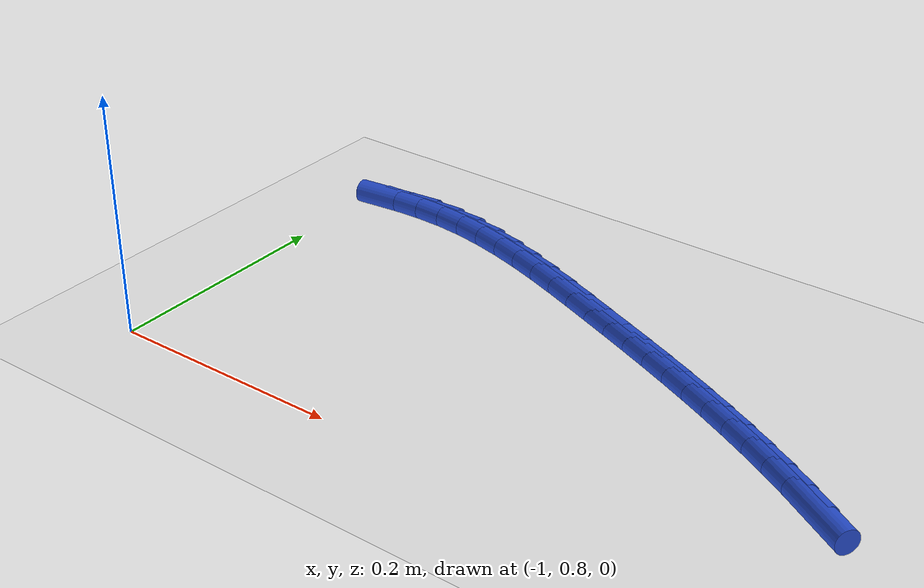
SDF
<sdf version="1.6">
 <world name="default">
  <model name="ground_plane">
   <static>1</static>
   <link name="link">
    <collision name="collision">
     <geometry><plane><normal>0 0 1</normal><size>100 100</size></plane></geometry>
     <surface><friction><ode><mu>100</mu><mu2>50</mu2></ode></friction></surface>
    </collision>
    <visual name="visual">
     <cast_shadows>0</cast_shadows>
     <geometry><plane><normal>0 0 1</normal><size>100 100</size></plane></geometry>
     <material>
      <script><uri>file://media/materials/scripts/gazebo.material</uri><name>Gazebo/WhiteGlow</name></script>
     </material>
    </visual>
   </link>
  </model>
  <model name="line">
   <link name="link_41">
    <pose>-0.4624098339774462 0.9082237432184129 0.01 0 1.57 -0.5429785711575642</pose>
    <collision name="collision">
     <geometry><cylinder><radius>0.01</radius><length>0.08</length></cylinder></geometry>
    </collision>
    <visual name="visual">
     <material>
      <script><name>Gazebo/Blue</name><uri>file://media/materials/scripts/gazebo.material</uri></script>
     </material>
     <geometry><cylinder><radius>0.01</radius><length>0.08</length></cylinder></geometry>
    </visual>
   </link>
   <link name="link_42">
    <pose>-0.4843193575159778 0.9214458272823145 0.01 0 1.57 -0.517570465941171</pose>
    <collision name="collision">
     <geometry><cylinder><radius>0.01</radius><length>0.08</length></cylinder></geometry>
    </collision>
    <visual name="visual">
     <material>
      <script><name>Gazebo/Blue</name><uri>file://media/materials/scripts/gazebo.material</uri></script>
     </material>
     <geometry><cylinder><radius>0.01</radius><length>0.08</length></cylinder></geometry>
    </visual>
   </link>
   <link name="link_43">
    <pose>-0.5065092868379267 0.9340794483927238 0.01 0 1.57 -0.4941953560387322</pose>
    <collision name="collision">
     <geometry><cylinder><radius>0.01</radius><length>0.08</length></cylinder></geometry>
    </collision>
    <visual name="visual">
     <material>
      <script><name>Gazebo/Blue</name><uri>file://media/materials/scripts/gazebo.material</uri></script>
     </material>
     <geometry><cylinder><radius>0.01</radius><length>0.08</length></cylinder></geometry>
    </visual>
   </link>
   <link name="link_44">
    <pose>-0.5289666391678735 0.9461792275500257 0.01 0 1.57 -0.47292653974310134</pose>
    <collision name="collision">
     <geometry><cylinder><radius>0.01</radius><length>0.08</length></cylinder></geometry>
    </collision>
    <visual name="visual">
     <material>
      <script><name>Gazebo/Blue</name><uri>file://media/materials/scripts/gazebo.material</uri></script>
     </material>
     <geometry><cylinder><radius>0.01</radius><length>0.08</length></cylinder></geometry>
    </visual>
   </link>
   <link name="link_45">
    <pose>-0.5516784317303979 0.9577997857546059 0.01 0 1.57 -0.45381763930004954</pose>
    <collision name="collision">
     <geometry><cylinder><radius>0.01</radius><length>0.08</length></cylinder></geometry>
    </collision>
    <visual name="visual">
     <material>
      <script><name>Gazebo/Blue</name><uri>file://media/materials/scripts/gazebo.material</uri></script>
     </material>
     <geometry><cylinder><radius>0.01</radius><length>0.08</length></cylinder></geometry>
    </visual>
   </link>
   <link name="link_46">
    <pose>-0.5746316817500805 0.9689957440068487 0.01 0 1.57 -0.436904879874559</pose>
    <collision name="collision">
     <geometry><cylinder><radius>0.01</radius><length>0.08</length></cylinder></geometry>
    </collision>
    <visual name="visual">
     <material>
      <script><name>Gazebo/Blue</name><uri>file://media/materials/scripts/gazebo.material</uri></script>
     </material>
     <geometry><cylinder><radius>0.01</radius><length>0.08</length></cylinder></geometry>
    </visual>
   </link>
   <link name="link_47">
    <pose>-0.5978134064515013 0.9798217233071401 0.01 0 1.57 -0.42220948752634563</pose>
    <collision name="collision">
     <geometry><cylinder><radius>0.01</radius><length>0.08</length></cylinder></geometry>
    </collision>
    <visual name="visual">
     <material>
      <script><name>Gazebo/Blue</name><uri>file://media/materials/scripts/gazebo.material</uri></script>
     </material>
     <geometry><cylinder><radius>0.01</radius><length>0.08</length></cylinder></geometry>
    </visual>
   </link>
   <link name="link_48">
    <pose>-0.6212106230592401 0.9903323446558651 0.01 0 1.57 -0.4097400491713788</pose>
    <collision name="collision">
     <geometry><cylinder><radius>0.01</radius><length>0.08</length></cylinder></geometry>
    </collision>
    <visual name="visual">
     <material>
      <script><name>Gazebo/Blue</name><uri>file://media/materials/scripts/gazebo.material</uri></script>
     </material>
     <geometry><cylinder><radius>0.01</radius><length>0.08</length></cylinder></geometry>
    </visual>
   </link>
   <link name="link_49">
    <pose>-0.6448103487978774 1.0005822290534085 0.01 0 1.57 -0.39949471489185256</pose>
    <collision name="collision">
     <geometry><cylinder><radius>0.01</radius><length>0.08</length></cylinder></geometry>
    </collision>
    <visual name="visual">
     <material>
      <script><name>Gazebo/Blue</name><uri>file://media/materials/scripts/gazebo.material</uri></script>
     </material>
     <geometry><cylinder><radius>0.01</radius><length>0.08</length></cylinder></geometry>
    </visual>
   </link>
   <link name="link_50">
    <pose>-0.6685996008919932 1.010625997500156 0.01 0 1.57 -0.3914631587835882</pose>
    <collision name="collision">
     <geometry><cylinder><radius>0.01</radius><length>0.08</length></cylinder></geometry>
    </collision>
    <visual name="visual">
     <material>
      <script><name>Gazebo/Blue</name><uri>file://media/materials/scripts/gazebo.material</uri></script>
     </material>
     <geometry><cylinder><radius>0.01</radius><length>0.08</length></cylinder></geometry>
    </visual>
   </link>
   <link name="link_51">
    <pose>-0.6925653965661681 1.0205182709964924 0.01 0 1.57 -0.3856282459099491</pose>
    <collision name="collision">
     <geometry><cylinder><radius>0.01</radius><length>0.08</length></cylinder></geometry>
    </collision>
    <visual name="visual">
     <material>
      <script><name>Gazebo/Blue</name><uri>file://media/materials/scripts/gazebo.material</uri></script>
     </material>
     <geometry><cylinder><radius>0.01</radius><length>0.08</length></cylinder></geometry>
    </visual>
   </link>
   <link name="link_52">
    <pose>-0.7166947530449813 1.030313670542803 0.01 0 1.57 -0.381757426390218</pose>
    <collision name="collision">
     <geometry><cylinder><radius>0.01</radius><length>0.08</length></cylinder></geometry>
    </collision>
    <visual name="visual">
     <material>
      <script><name>Gazebo/Blue</name><uri>file://media/materials/scripts/gazebo.material</uri></script>
     </material>
     <geometry><cylinder><radius>0.01</radius><length>0.08</length></cylinder></geometry>
    </visual>
   </link>
   <link name="link_53">
    <pose>-0.7409746263709259 1.0400608729017524 0.01 0 1.57 -0.37437469125563466</pose>
    <collision name="collision">
     <geometry><cylinder><radius>0.01</radius><length>0.08</length></cylinder></geometry>
    </collision>
    <visual name="visual">
     <material>
      <script><name>Gazebo/Blue</name><uri>file://media/materials/scripts/gazebo.material</uri></script>
     </material>
     <geometry><cylinder><radius>0.01</radius><length>0.08</length></cylinder></geometry>
    </visual>
   </link>
   <link name="link_54">
    <pose>-0.7653903811274507 1.049653934239682 0.01 0 1.57 -0.3575897353035585</pose>
    <collision name="collision">
     <geometry><cylinder><radius>0.01</radius><length>0.08</length></cylinder></geometry>
    </collision>
    <visual name="visual">
     <material>
      <script><name>Gazebo/Blue</name><uri>file://media/materials/scripts/gazebo.material</uri></script>
     </material>
     <geometry><cylinder><radius>0.01</radius><length>0.08</length></cylinder></geometry>
    </visual>
   </link>
   <link name="link_55">
    <pose>-0.7899256807906675 1.058821637081913 0.01 0 1.57 -0.3308634066605244</pose>
    <collision name="collision">
     <geometry><cylinder><radius>0.01</radius><length>0.08</length></cylinder></geometry>
    </collision>
    <visual name="visual">
     <material>
      <script><name>Gazebo/Blue</name><uri>file://media/materials/scripts/gazebo.material</uri></script>
     </material>
     <geometry><cylinder><radius>0.01</radius><length>0.08</length></cylinder></geometry>
    </visual>
   </link>
   <link name="link_56">
    <pose>-0.8145641056944198 1.06728468614163 0.01 0 1.57 -0.2937394545139934</pose>
    <collision name="collision">
     <geometry><cylinder><radius>0.01</radius><length>0.08</length></cylinder></geometry>
    </collision>
    <visual name="visual">
     <material>
      <script><name>Gazebo/Blue</name><uri>file://media/materials/scripts/gazebo.material</uri></script>
     </material>
     <geometry><cylinder><radius>0.01</radius><length>0.08</length></cylinder></geometry>
    </visual>
   </link>
   <link name="link_57">
    <pose>-0.8392892361725509 1.0747637861320178 0.01 0 1.57 -0.24562389785741015</pose>
    <collision name="collision">
     <geometry><cylinder><radius>0.01</radius><length>0.08</length></cylinder></geometry>
    </collision>
    <visual name="visual">
     <material>
      <script><name>Gazebo/Blue</name><uri>file://media/materials/scripts/gazebo.material</uri></script>
     </material>
     <geometry><cylinder><radius>0.01</radius><length>0.08</length></cylinder></geometry>
    </visual>
   </link>
   <link name="link_58">
    <pose>-0.8640846525589053 1.0809796417662605 0.01 0 1.57 -0.18589509119703854</pose>
    <collision name="collision">
     <geometry><cylinder><radius>0.01</radius><length>0.08</length></cylinder></geometry>
    </collision>
    <visual name="visual">
     <material>
      <script><name>Gazebo/Blue</name><uri>file://media/materials/scripts/gazebo.material</uri></script>
     </material>
     <geometry><cylinder><radius>0.01</radius><length>0.08</length></cylinder></geometry>
    </visual>
   </link>
   <link name="link_59">
    <pose>-0.8889339351873253 1.0856529577575422 0.01 0 1.57 -0.11408088787265616</pose>
    <collision name="collision">
     <geometry><cylinder><radius>0.01</radius><length>0.08</length></cylinder></geometry>
    </collision>
    <visual name="visual">
     <material>
      <script><name>Gazebo/Blue</name><uri>file://media/materials/scripts/gazebo.material</uri></script>
     </material>
     <geometry><cylinder><radius>0.01</radius><length>0.08</length></cylinder></geometry>
    </visual>
   </link>
   <link name="link_60">
    <pose>-0.9138206643916549 1.088504438819048 0.01 0 1.57 -0.03259964631753431</pose>
    <collision name="collision">
     <geometry><cylinder><radius>0.01</radius><length>0.08</length></cylinder></geometry>
    </collision>
    <visual name="visual">
     <material>
      <script><name>Gazebo/Blue</name><uri>file://media/materials/scripts/gazebo.material</uri></script>
     </material>
     <geometry><cylinder><radius>0.01</radius><length>0.08</length></cylinder></geometry>
    </visual>
   </link>
   <link name="link_61">
    <pose>-0.9387318740127207 1.0893168232460746 0.01 0 1.57 0.04255443384385552</pose>
    <collision name="collision">
     <geometry><cylinder><radius>0.01</radius><length>0.08</length></cylinder></geometry>
    </collision>
    <visual name="visual">
     <material>
      <script><name>Gazebo/Blue</name><uri>file://media/materials/scripts/gazebo.material</uri></script>
     </material>
     <geometry><cylinder><radius>0.01</radius><length>0.08</length></cylinder></geometry>
    </visual>
   </link>
   <link name="link_62">
    <pose>-0.9636758563961211 1.0882547049976836 0.01 0 1.57 0.10471824326895153</pose>
    <collision name="collision">
     <geometry><cylinder><radius>0.01</radius><length>0.08</length></cylinder></geometry>
    </collision>
    <visual name="visual">
     <material>
      <script><name>Gazebo/Blue</name><uri>file://media/materials/scripts/gazebo.material</uri></script>
     </material>
     <geometry><cylinder><radius>0.01</radius><length>0.08</length></cylinder></geometry>
    </visual>
   </link>
  </model>
 </world>
</sdf>
